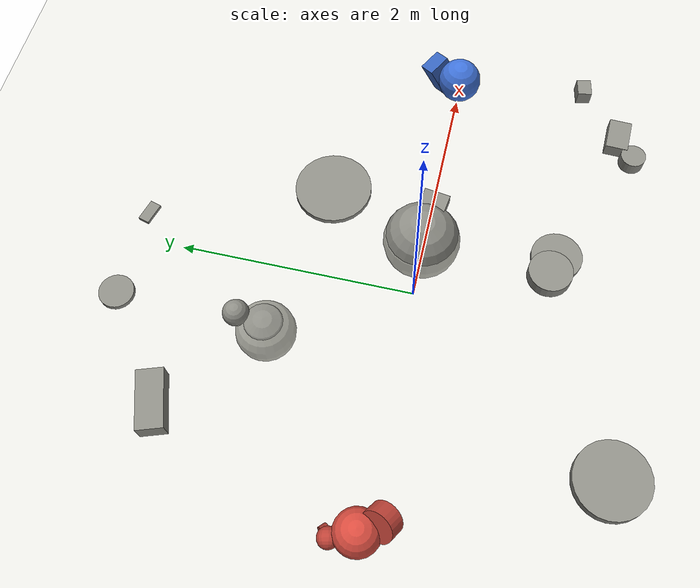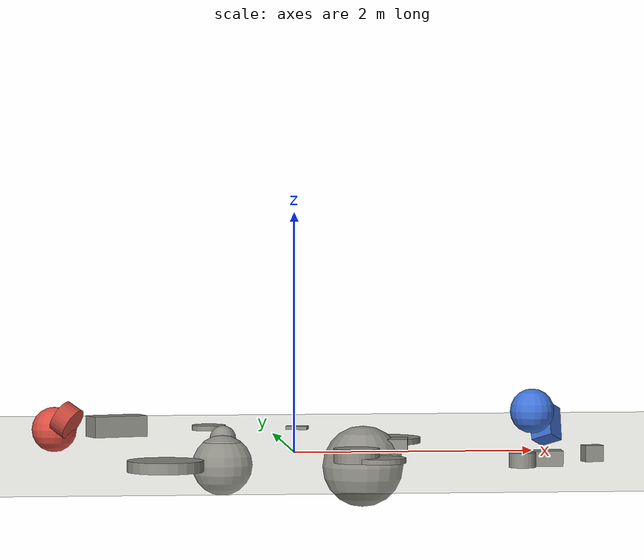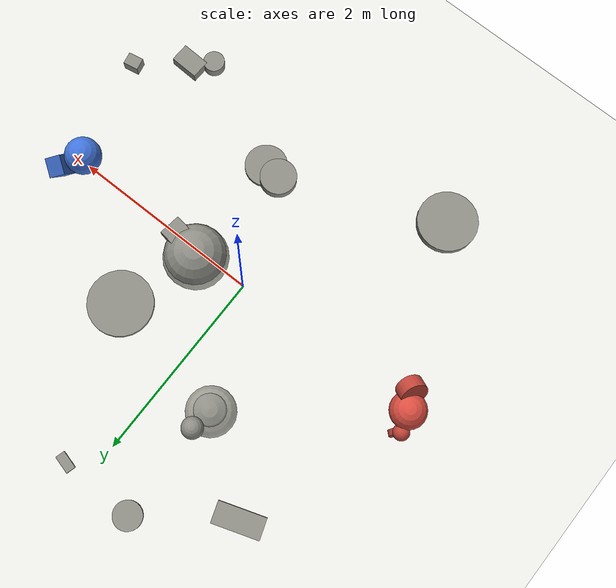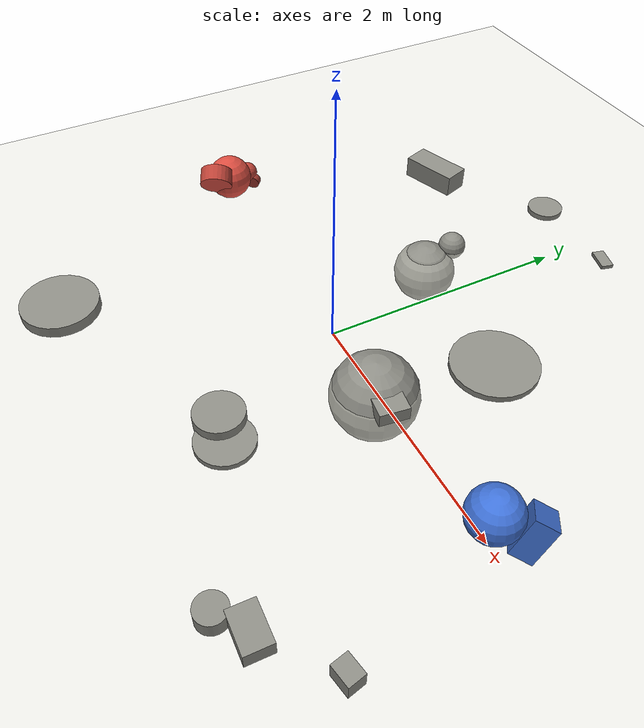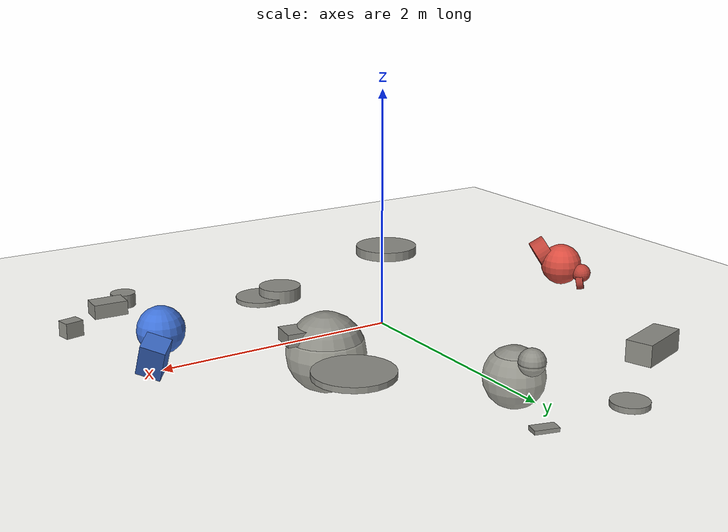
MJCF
<mujoco model="rabbitstew"><compiler angle="radian" autolimits="true" /><option timestep="0.005" gravity="0 0 -9.81" /><default><geom friction="1 0.005 0.0001" condim="3" solref="0.01 1" solimp="0.9 0.95 0.001" /><joint armature="0.005" /><motor ctrllimited="true" ctrlrange="-1 1" /></default><worldbody><geom name="floor" type="plane" size="0 0 1" rgba="0.85 0.85 0.8 1" /><light pos="0 0 4" dir="0 0 -1" diffuse="0.8 0.8 0.8" /><geom name="scenery0" pos="0.588138 -1.1156 0.0208862" quat="1 0 0 0" rgba="0.55 0.55 0.52 1" type="cylinder" size="0.218073 0.0208862" /><geom name="scenery1" pos="1.68602 -1.63908 0.0593242" quat="1 0 0 0" rgba="0.55 0.55 0.52 1" type="cylinder" size="0.109164 0.0593242" /><geom name="scenery2" pos="-1.19916 -1.76355 0.04495" quat="1 0 0 0" rgba="0.55 0.55 0.52 1" type="cylinder" size="0.306744 0.04495" /><geom name="scenery3" pos="2.33252 -1.12476 0.0663091" quat="0.995272 0 0 0.0971303" rgba="0.55 0.55 0.52 1" type="box" size="0.0780855 0.062265 0.0663091" /><geom name="scenery4" pos="-0.528399 2.4018 0.0219671" quat="1 0 0 0" rgba="0.55 0.55 0.52 1" type="cylinder" size="0.147247 0.0219671" /><geom name="scenery5" pos="-1.37742 1.78223 0.0903501" quat="0.986783 0 0 0.16205" rgba="0.55 0.55 0.52 1" type="box" size="0.24214 0.1102 0.0903501" /><geom name="scenery6" pos="-0.485057 1.38928 0.00450358" quat="1 0 0 0" rgba="0.55 0.55 0.52 1" type="sphere" size="0.113096" /><geom name="scenery7" pos="0.579411 0.0396035 -0.126374" quat="1 0 0 0" rgba="0.55 0.55 0.52 1" type="sphere" size="0.338738" /><geom name="scenery8" pos="1.88194 -1.49 0.0615057" quat="0.0204525 0 0 0.999791" rgba="0.55 0.55 0.52 1" type="box" size="0.146497 0.0972545 0.0615057" /><geom name="scenery9" pos="0.254495 2.38908 0.0151539" quat="0.13327 0 0 0.99108" rgba="0.55 0.55 0.52 1" type="box" size="0.0943341 0.0493801 0.0151539" /><geom name="scenery10" pos="0.405607 -1.07939 0.0582905" quat="1 0 0 0" rgba="0.55 0.55 0.52 1" type="cylinder" size="0.187037 0.0582905" /><geom name="scenery11" pos="-0.509484 1.15044 -0.204154" quat="1 0 0 0" rgba="0.55 0.55 0.52 1" type="sphere" size="0.258523" /><geom name="scenery12" pos="0.831178 0.886242 0.0241662" quat="1 0 0 0" rgba="0.55 0.55 0.52 1" type="cylinder" size="0.333017 0.0241662" /><geom name="scenery13" pos="0.811264 0.000437043 0.0544535" quat="0.0705477 0 0 0.997508" rgba="0.55 0.55 0.52 1" type="box" size="0.137848 0.11518 0.0544535" /><body name="r0_p0" pos="-2 2.44929e-16 0.204931" quat="1 -0 -0 -6.12323e-17"><freejoint name="r0_root" /><geom type="sphere" size="0.186105" name="r0_g0" pos="0 0 0" mass="10.7964" rgba="0.850 0.300 0.250 1" /><body name="r0_p1" pos="-0.053704 0.141319 -0.108535" quat="0.207455 0.577882 0.32826 0.717816"><joint name="r0_j1" type="slide" axis="-0.82848 -0.426839 -0.362533" damping="2.15927" range="-0.193872 0.193872" /><geom type="sphere" size="0.0844339" name="r0_g1" pos="0.0844339 0 0" mass="1.00821" rgba="0.748 0.264 0.220 1" /><body name="r0_p3" pos="0.0194859 -0.0593724 0.0567829" quat="0.756699 0.550405 0.0961134 -0.339446"><joint name="r0_j3" type="hinge" axis="-0.213455 -0.0918005 -0.97263" damping="0.201643" range="-0.464023 0.464023" /><geom type="cylinder" size="0.0623226 0.0309427" quat="0.707107 0 0.707107 0" name="r0_g3" pos="0.0309427 0 0" mass="0.301955" rgba="0.646 0.228 0.190 1" /></body></body><body name="r0_p2" pos="0.04295 -0.130866 0.125158" quat="0.756699 0.550405 0.0961134 -0.339446"><joint name="r0_j2" type="hinge" axis="-0.213455 -0.0918005 -0.97263" damping="2.15927" range="-0.464023 0.464023" /><geom type="cylinder" size="0.137368 0.0682024" quat="0.707107 0 0.707107 0" name="r0_g2" pos="0.0682024 0 0" mass="3.23346" rgba="0.748 0.264 0.220 1" /></body></body><body name="r1_p0" pos="2 -4.89859e-16 0.32942" quat="6.12323e-17 0 0 1"><freejoint name="r1_root" /><geom type="sphere" size="0.186105" name="r1_g0" pos="0 0 0" mass="11.3464" rgba="0.250 0.450 0.850 1" /><body name="r1_p1" pos="-0.0898617 -0.133361 -0.0936738" quat="0.405913 0.11142 0.218919 -0.880281"><joint name="r1_j1" type="ball" damping="0.798729" /><geom type="box" size="0.0832754 0.0973908 0.146471" name="r1_g1" pos="0.0832754 0 0" mass="3.99364" rgba="0.220 0.396 0.748 1" /></body></body></worldbody><actuator><general name="r0_a1_0" joint="r0_j1" gaintype="fixed" biastype="affine" gainprm="43.1855" biasprm="0 -222.752 -22.2752" /><general name="r0_a2_0" joint="r0_j2" gaintype="fixed" biastype="affine" gainprm="43.1855" biasprm="0 0 -3.59879" /><general name="r0_a3_0" joint="r0_j3" gaintype="fixed" biastype="affine" gainprm="4.03286" biasprm="0 0 -0.336071" /></actuator></mujoco>
